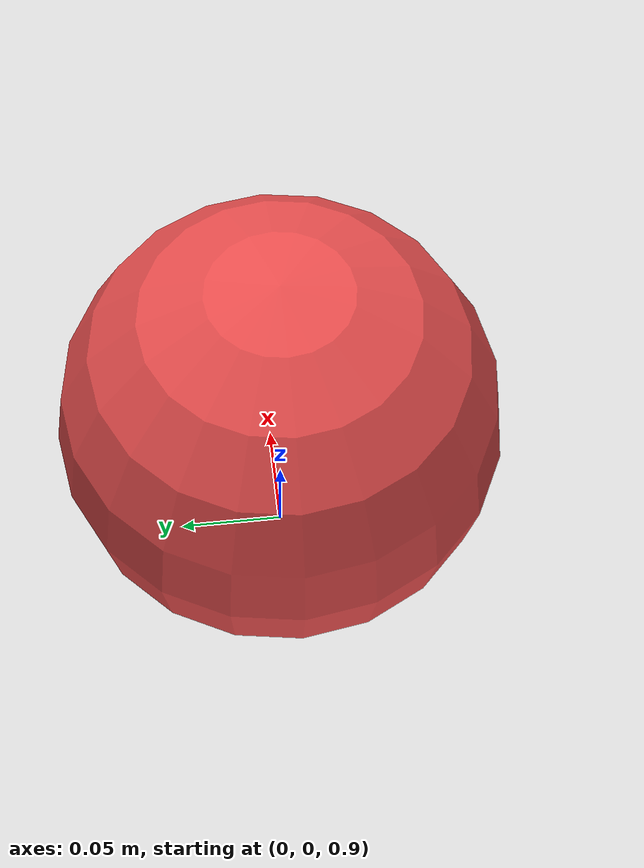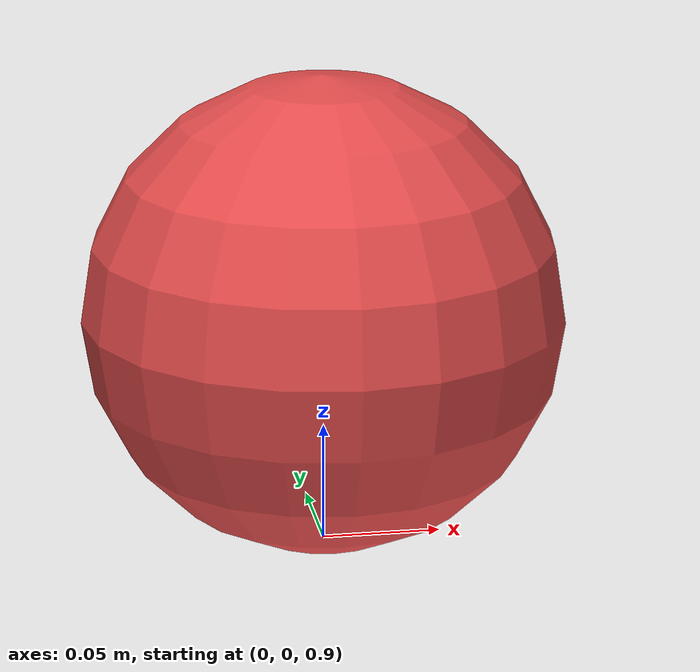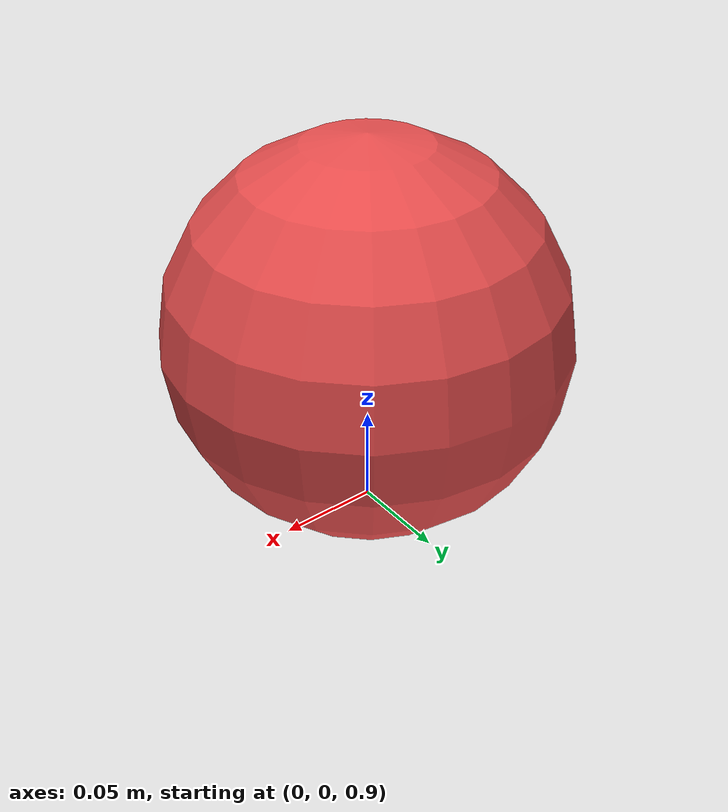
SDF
<?xml version="1.0" ?>
<sdf version="1.4">
  <world name="target_4">
    <include>
      <uri>model://ground_plane</uri>
    </include>
    <include>
      <uri>model://sun</uri>
    </include>

    <!-- Only one ROS interface plugin is required per world, as any other plugin can connect a Gazebo
         topic to a ROS topic (or vise versa). -->
    <plugin name="ros_interface_plugin" filename="librotors_gazebo_ros_interface_plugin.so"/>

    <spherical_coordinates>
      <surface_model>EARTH_WGS84</surface_model>
      <latitude_deg>47.3667</latitude_deg>
      <longitude_deg>8.5500</longitude_deg>
      <elevation>500.0</elevation>
      <heading_deg>0</heading_deg>
    </spherical_coordinates>
    <physics type='ode'>
      <ode>
        <solver>
          <type>quick</type>
          <iters>1000</iters>
          <sor>1.3</sor>
        </solver>
        <constraints>
          <cfm>0</cfm>
          <erp>0.2</erp>
          <contact_max_correcting_vel>100</contact_max_correcting_vel>
          <contact_surface_layer>0.001</contact_surface_layer>
        </constraints>
      </ode>
      <max_step_size>0.01</max_step_size>
      <real_time_factor>1</real_time_factor>
      <real_time_update_rate>100</real_time_update_rate>
      <gravity>0 0 -9.8</gravity>
    </physics>
    <model name='sphere_target_0'>
      <link name='sphere_target_0::link'>
        <pose frame=''>0 0 0 0 -0 0</pose>
        <inertial>
          <mass>1</mass>
          <inertia>
            <ixx>0.1</ixx>
            <ixy>0</ixy>
            <ixz>0</ixz>
            <iyy>0.1</iyy>
            <iyz>0</iyz>
            <izz>0.1</izz>
          </inertia>
          <pose frame=''>0 0 0 0 -0 0</pose>
        </inertial>
        <self_collide>0</self_collide>
        <kinematic>0</kinematic>
        <gravity>0</gravity>
        <visual name='visual_0'>
          <geometry>
            <sphere>
              <radius>0.1</radius>
            </sphere>
          </geometry>
          <material>
            <script>
              <name>Gazebo/Grey</name>
              <uri>file://media/materials/scripts/gazebo.material</uri>
            </script>
            <ambient>0.9 0.3 0.3 1</ambient>
            <diffuse>0.7 0.7 0.7 1</diffuse>
            <specular>0.01 0.01 0.01 1</specular>
            <emissive>0 0 0 1</emissive>
            <shader type='vertex'>
              <normal_map>__default__</normal_map>
            </shader>
          </material>
          <pose frame=''>0 0 0 0 -0 0</pose>
          <cast_shadows>0</cast_shadows>
          <transparency>0</transparency>
        </visual>
      </link>
      <static>0</static>
      <allow_auto_disable>1</allow_auto_disable>
      <pose frame=''>0.0 0.0 1 0 -0 0</pose>
    </model>
    <model name='sphere_target_1'>
      <link name='sphere_target_1::link'>
        <pose frame=''>0 0 0 0 -0 0</pose>
        <inertial>
          <mass>1</mass>
          <inertia>
            <ixx>0.1</ixx>
            <ixy>0</ixy>
            <ixz>0</ixz>
            <iyy>0.1</iyy>
            <iyz>0</iyz>
            <izz>0.1</izz>
          </inertia>
          <pose frame=''>0 0 0 0 -0 0</pose>
        </inertial>
        <self_collide>0</self_collide>
        <kinematic>0</kinematic>
        <gravity>0</gravity>
        <visual name='visual_1'>
          <geometry>
            <sphere>
              <radius>0.1</radius>
            </sphere>
          </geometry>
          <material>
            <script>
              <name>Gazebo/Grey</name>
              <uri>file://media/materials/scripts/gazebo.material</uri>
            </script>
            <ambient>0.9 0.3 0.3 1</ambient>
            <diffuse>0.7 0.7 0.7 1</diffuse>
            <specular>0.01 0.01 0.01 1</specular>
            <emissive>0 0 0 1</emissive>
            <shader type='vertex'>
              <normal_map>__default__</normal_map>
            </shader>
          </material>
          <pose frame=''>0 0 0 0 -0 0</pose>
          <cast_shadows>0</cast_shadows>
          <transparency>0</transparency>
        </visual>
      </link>
      <static>0</static>
      <allow_auto_disable>1</allow_auto_disable>
      <pose frame=''>0.0 0.0 1 0 -0 0</pose>
    </model>
    <model name='sphere_target_2'>
      <link name='sphere_target_2::link'>
        <pose frame=''>0 0 0 0 -0 0</pose>
        <inertial>
          <mass>1</mass>
          <inertia>
            <ixx>0.1</ixx>
            <ixy>0</ixy>
            <ixz>0</ixz>
            <iyy>0.1</iyy>
            <iyz>0</iyz>
            <izz>0.1</izz>
          </inertia>
          <pose frame=''>0 0 0 0 -0 0</pose>
        </inertial>
        <self_collide>0</self_collide>
        <kinematic>0</kinematic>
        <gravity>0</gravity>
        <visual name='visual_2'>
          <geometry>
            <sphere>
              <radius>0.1</radius>
            </sphere>
          </geometry>
          <material>
            <script>
              <name>Gazebo/Grey</name>
              <uri>file://media/materials/scripts/gazebo.material</uri>
            </script>
            <ambient>0.9 0.3 0.3 1</ambient>
            <diffuse>0.7 0.7 0.7 1</diffuse>
            <specular>0.01 0.01 0.01 1</specular>
            <emissive>0 0 0 1</emissive>
            <shader type='vertex'>
              <normal_map>__default__</normal_map>
            </shader>
          </material>
          <pose frame=''>0 0 0 0 -0 0</pose>
          <cast_shadows>0</cast_shadows>
          <transparency>0</transparency>
        </visual>
      </link>
      <static>0</static>
      <allow_auto_disable>1</allow_auto_disable>
      <pose frame=''>0.0 0.0 1 0 -0 0</pose>
    </model>
    <model name='sphere_target_3'>
      <link name='sphere_target_3::link'>
        <pose frame=''>0 0 0 0 -0 0</pose>
        <inertial>
          <mass>1</mass>
          <inertia>
            <ixx>0.1</ixx>
            <ixy>0</ixy>
            <ixz>0</ixz>
            <iyy>0.1</iyy>
            <iyz>0</iyz>
            <izz>0.1</izz>
          </inertia>
          <pose frame=''>0 0 0 0 -0 0</pose>
        </inertial>
        <self_collide>0</self_collide>
        <kinematic>0</kinematic>
        <gravity>0</gravity>
        <visual name='visual_3'>
          <geometry>
            <sphere>
              <radius>0.1</radius>
            </sphere>
          </geometry>
          <material>
            <script>
              <name>Gazebo/Grey</name>
              <uri>file://media/materials/scripts/gazebo.material</uri>
            </script>
            <ambient>0.9 0.3 0.3 1</ambient>
            <diffuse>0.7 0.7 0.7 1</diffuse>
            <specular>0.01 0.01 0.01 1</specular>
            <emissive>0 0 0 1</emissive>
            <shader type='vertex'>
              <normal_map>__default__</normal_map>
            </shader>
          </material>
          <pose frame=''>0 0 0 0 -0 0</pose>
          <cast_shadows>0</cast_shadows>
          <transparency>0</transparency>
        </visual>
      </link>
      <static>0</static>
      <allow_auto_disable>1</allow_auto_disable>
      <pose frame=''>0.0 0.0 1 0 -0 0</pose>
    </model>
    <model name='sphere_target_4'>
      <link name='sphere_target_4::link'>
        <pose frame=''>0 0 0 0 -0 0</pose>
        <inertial>
          <mass>1</mass>
          <inertia>
            <ixx>0.1</ixx>
            <ixy>0</ixy>
            <ixz>0</ixz>
            <iyy>0.1</iyy>
            <iyz>0</iyz>
            <izz>0.1</izz>
          </inertia>
          <pose frame=''>0 0 0 0 -0 0</pose>
        </inertial>
        <self_collide>0</self_collide>
        <kinematic>0</kinematic>
        <gravity>0</gravity>
        <visual name='visual_4'>
          <geometry>
            <sphere>
              <radius>0.1</radius>
            </sphere>
          </geometry>
          <material>
            <script>
              <name>Gazebo/Grey</name>
              <uri>file://media/materials/scripts/gazebo.material</uri>
            </script>
            <ambient>0.9 0.3 0.3 1</ambient>
            <diffuse>0.7 0.7 0.7 1</diffuse>
            <specular>0.01 0.01 0.01 1</specular>
            <emissive>0 0 0 1</emissive>
            <shader type='vertex'>
              <normal_map>__default__</normal_map>
            </shader>
          </material>
          <pose frame=''>0 0 0 0 -0 0</pose>
          <cast_shadows>0</cast_shadows>
          <transparency>0</transparency>
        </visual>
      </link>
      <static>0</static>
      <allow_auto_disable>1</allow_auto_disable>
      <pose frame=''>0.0 0.0 1 0 -0 0</pose>
    </model>
    <model name='sphere_target_5'>
      <link name='sphere_target_5::link'>
        <pose frame=''>0 0 0 0 -0 0</pose>
        <inertial>
          <mass>1</mass>
          <inertia>
            <ixx>0.1</ixx>
            <ixy>0</ixy>
            <ixz>0</ixz>
            <iyy>0.1</iyy>
            <iyz>0</iyz>
            <izz>0.1</izz>
          </inertia>
          <pose frame=''>0 0 0 0 -0 0</pose>
        </inertial>
        <self_collide>0</self_collide>
        <kinematic>0</kinematic>
        <gravity>0</gravity>
        <visual name='visual_5'>
          <geometry>
            <sphere>
              <radius>0.1</radius>
            </sphere>
          </geometry>
          <material>
            <script>
              <name>Gazebo/Grey</name>
              <uri>file://media/materials/scripts/gazebo.material</uri>
            </script>
            <ambient>0.9 0.3 0.3 1</ambient>
            <diffuse>0.7 0.7 0.7 1</diffuse>
            <specular>0.01 0.01 0.01 1</specular>
            <emissive>0 0 0 1</emissive>
            <shader type='vertex'>
              <normal_map>__default__</normal_map>
            </shader>
          </material>
          <pose frame=''>0 0 0 0 -0 0</pose>
          <cast_shadows>0</cast_shadows>
          <transparency>0</transparency>
        </visual>
      </link>
      <static>0</static>
      <allow_auto_disable>1</allow_auto_disable>
      <pose frame=''>0.0 0.0 1 0 -0 0</pose>
    </model>
    <model name='sphere_target_6'>
      <link name='sphere_target_6::link'>
        <pose frame=''>0 0 0 0 -0 0</pose>
        <inertial>
          <mass>1</mass>
          <inertia>
            <ixx>0.1</ixx>
            <ixy>0</ixy>
            <ixz>0</ixz>
            <iyy>0.1</iyy>
            <iyz>0</iyz>
            <izz>0.1</izz>
          </inertia>
          <pose frame=''>0 0 0 0 -0 0</pose>
        </inertial>
        <self_collide>0</self_collide>
        <kinematic>0</kinematic>
        <gravity>0</gravity>
        <visual name='visual_6'>
          <geometry>
            <sphere>
              <radius>0.1</radius>
            </sphere>
          </geometry>
          <material>
            <script>
              <name>Gazebo/Grey</name>
              <uri>file://media/materials/scripts/gazebo.material</uri>
            </script>
            <ambient>0.9 0.3 0.3 1</ambient>
            <diffuse>0.7 0.7 0.7 1</diffuse>
            <specular>0.01 0.01 0.01 1</specular>
            <emissive>0 0 0 1</emissive>
            <shader type='vertex'>
              <normal_map>__default__</normal_map>
            </shader>
          </material>
          <pose frame=''>0 0 0 0 -0 0</pose>
          <cast_shadows>0</cast_shadows>
          <transparency>0</transparency>
        </visual>
      </link>
      <static>0</static>
      <allow_auto_disable>1</allow_auto_disable>
      <pose frame=''>0.0 0.0 1 0 -0 0</pose>
    </model>
    <model name='sphere_target_7'>
      <link name='sphere_target_7::link'>
        <pose frame=''>0 0 0 0 -0 0</pose>
        <inertial>
          <mass>1</mass>
          <inertia>
            <ixx>0.1</ixx>
            <ixy>0</ixy>
            <ixz>0</ixz>
            <iyy>0.1</iyy>
            <iyz>0</iyz>
            <izz>0.1</izz>
          </inertia>
          <pose frame=''>0 0 0 0 -0 0</pose>
        </inertial>
        <self_collide>0</self_collide>
        <kinematic>0</kinematic>
        <gravity>0</gravity>
        <visual name='visual_7'>
          <geometry>
            <sphere>
              <radius>0.1</radius>
            </sphere>
          </geometry>
          <material>
            <script>
              <name>Gazebo/Grey</name>
              <uri>file://media/materials/scripts/gazebo.material</uri>
            </script>
            <ambient>0.9 0.3 0.3 1</ambient>
            <diffuse>0.7 0.7 0.7 1</diffuse>
            <specular>0.01 0.01 0.01 1</specular>
            <emissive>0 0 0 1</emissive>
            <shader type='vertex'>
              <normal_map>__default__</normal_map>
            </shader>
          </material>
          <pose frame=''>0 0 0 0 -0 0</pose>
          <cast_shadows>0</cast_shadows>
          <transparency>0</transparency>
        </visual>
      </link>
      <static>0</static>
      <allow_auto_disable>1</allow_auto_disable>
      <pose frame=''>0.0 0.0 1 0 -0 0</pose>
    </model>
    <model name='sphere_target_8'>
      <link name='sphere_target_8::link'>
        <pose frame=''>0 0 0 0 -0 0</pose>
        <inertial>
          <mass>1</mass>
          <inertia>
            <ixx>0.1</ixx>
            <ixy>0</ixy>
            <ixz>0</ixz>
            <iyy>0.1</iyy>
            <iyz>0</iyz>
            <izz>0.1</izz>
          </inertia>
          <pose frame=''>0 0 0 0 -0 0</pose>
        </inertial>
        <self_collide>0</self_collide>
        <kinematic>0</kinematic>
        <gravity>0</gravity>
        <visual name='visual_8'>
          <geometry>
            <sphere>
              <radius>0.1</radius>
            </sphere>
          </geometry>
          <material>
            <script>
              <name>Gazebo/Grey</name>
              <uri>file://media/materials/scripts/gazebo.material</uri>
            </script>
            <ambient>0.9 0.3 0.3 1</ambient>
            <diffuse>0.7 0.7 0.7 1</diffuse>
            <specular>0.01 0.01 0.01 1</specular>
            <emissive>0 0 0 1</emissive>
            <shader type='vertex'>
              <normal_map>__default__</normal_map>
            </shader>
          </material>
          <pose frame=''>0 0 0 0 -0 0</pose>
          <cast_shadows>0</cast_shadows>
          <transparency>0</transparency>
        </visual>
      </link>
      <static>0</static>
      <allow_auto_disable>1</allow_auto_disable>
      <pose frame=''>0.0 0.0 1 0 -0 0</pose>
    </model>

  </world>
</sdf>
